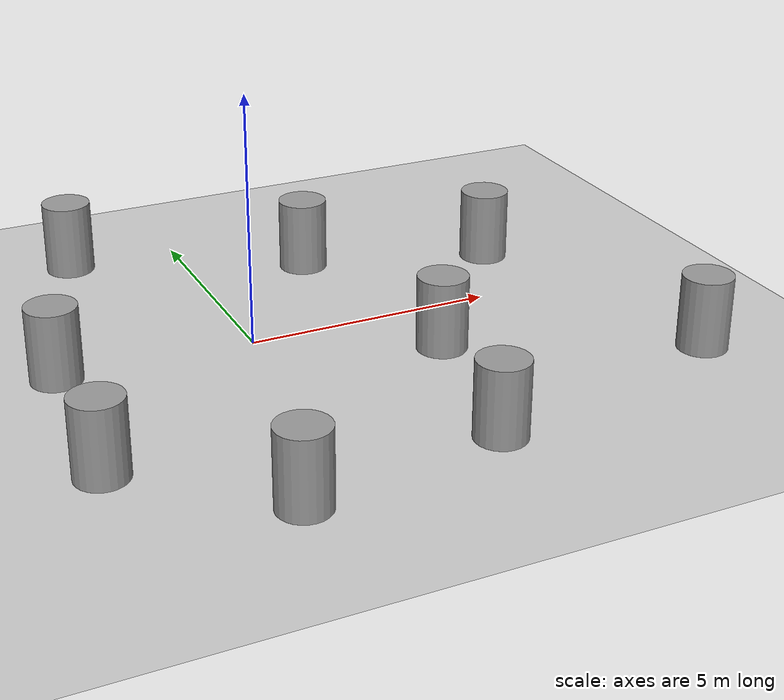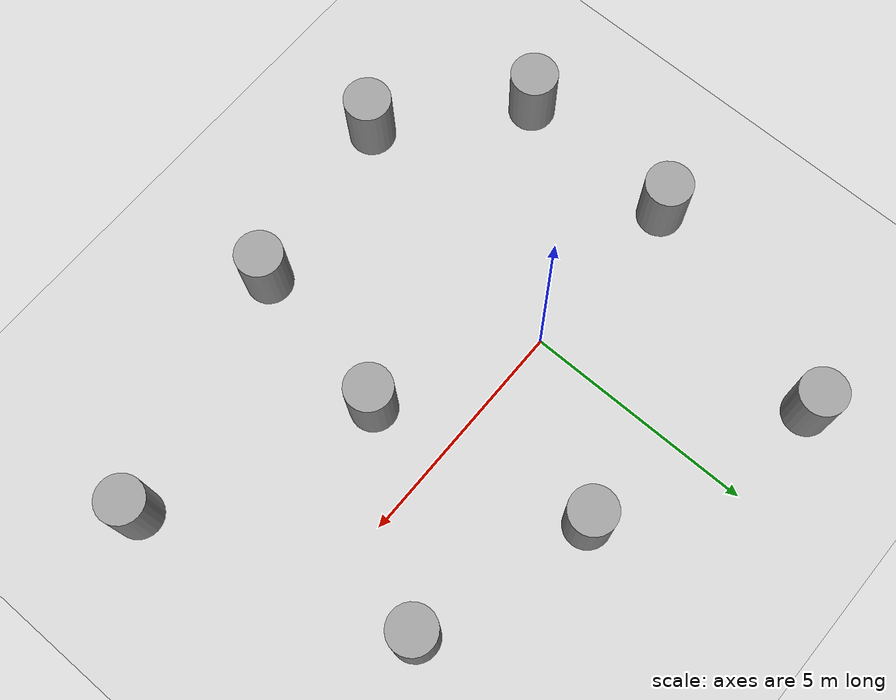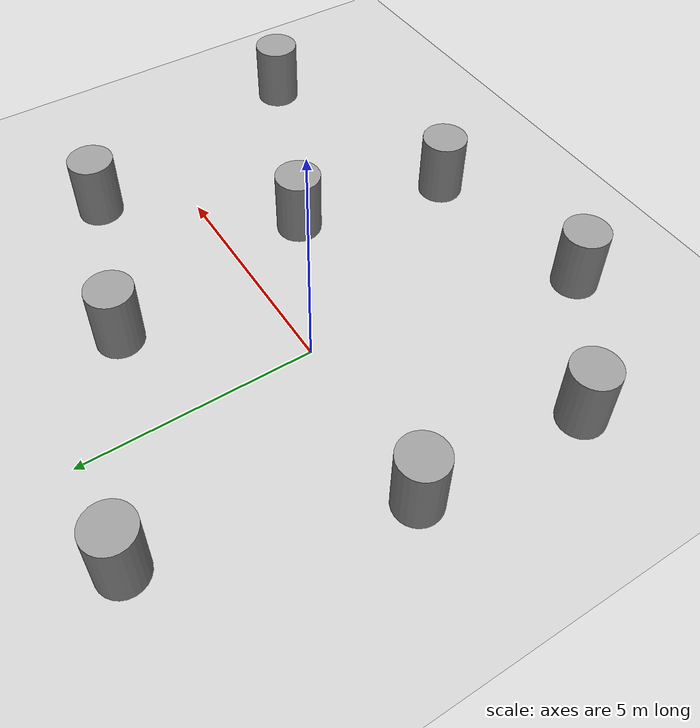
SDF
<sdf version="1.7">
 <world name="default">
  <light name="sun" type="directional">
   <pose>0 0 10 0 -0 0</pose>
   <diffuse>0.8 0.8 0.8 1</diffuse>
   <specular>0.2 0.2 0.2 1</specular>
   <attenuation>
    <range>1000</range>
    <constant>0.9</constant>
    <linear>0.01</linear>
    <quadratic>0.001</quadratic>
   </attenuation>
   <direction>-0.5 0.1 -0.9</direction>
   <spot><inner_angle>0</inner_angle><outer_angle>0</outer_angle><falloff>0</falloff></spot>
  </light>
  <model name="ground_plane">
   <static>1</static>
   <link name="link">
    <collision name="collision">
     <geometry><plane><normal>0 0 1</normal><size>100 100</size></plane></geometry>
     <surface><friction><ode><mu>100</mu><mu2>50</mu2></ode></friction></surface>
    </collision>
    <visual name="visual">
     <cast_shadows>0</cast_shadows>
     <geometry><plane><normal>0 0 1</normal><size>100 100</size></plane></geometry>
     <material>
      <script><uri>file://media/materials/scripts/gazebo.material</uri><name>Gazebo/Grey</name></script>
     </material>
    </visual>
   </link>
  </model>
  <gravity>0 0 -9.8</gravity>
  <magnetic_field>6e-06 2.3e-05 -4.2e-05</magnetic_field>
  <atmosphere type="adiabatic"/>
  <physics type="ode">
   <max_step_size>0.001</max_step_size>
   <real_time_factor>1</real_time_factor>
   <real_time_update_rate>1000</real_time_update_rate>
  </physics>
  <scene><ambient>0.4 0.4 0.4 1</ambient><background>0.7 0.7 0.7 1</background><shadows>1</shadows></scene>
  <spherical_coordinates>
   <surface_model>EARTH_WGS84</surface_model>
   <latitude_deg>0</latitude_deg>
   <longitude_deg>0</longitude_deg>
   <elevation>0</elevation>
   <heading_deg>0</heading_deg>
  </spherical_coordinates>
  <model name="unit_cylinder">
   <link name="link">
    <inertial>
     <mass>1</mass>
     <inertia><ixx>0.145833</ixx><ixy>0</ixy><ixz>0</ixz><iyy>0.145833</iyy><iyz>0</iyz><izz>0.125</izz></inertia>
    </inertial>
    <visual name="visual">
     <geometry><cylinder><radius>0.5</radius><length>2</length></cylinder></geometry>
     <material>
      <script><name>Gazebo/Grey</name><uri>file://media/materials/scripts/gazebo.material</uri></script>
      <shader type="pixel"><normal_map>__default__</normal_map></shader>
      <ambient>0.3 0.3 0.3 1</ambient>
      <diffuse>0.7 0.7 0.7 1</diffuse>
      <specular>0.01 0.01 0.01 1</specular>
      <emissive>0 0 0 1</emissive>
     </material>
    </visual>
    <collision name="collision">
     <geometry><cylinder><radius>0.5</radius><length>1</length></cylinder></geometry>
     <surface>
      <friction>
       <ode><mu>1</mu><mu2>1</mu2><fdir1>0 0 0</fdir1><slip1>0</slip1><slip2>0</slip2></ode>
       <torsional>
        <coefficient>1</coefficient>
        <patch_radius>0</patch_radius>
        <surface_radius>0</surface_radius>
        <use_patch_radius>1</use_patch_radius>
        <ode><slip>0</slip></ode>
       </torsional>
      </friction>
      <bounce><restitution_coefficient>0</restitution_coefficient><threshold>1e+06</threshold></bounce>
      <contact>
       <collide_without_contact>0</collide_without_contact>
       <collide_without_contact_bitmask>1</collide_without_contact_bitmask>
       <collide_bitmask>1</collide_bitmask>
       <ode>
        <soft_cfm>0</soft_cfm>
        <soft_erp>0.2</soft_erp>
        <kp>1e+13</kp>
        <kd>1</kd>
        <max_vel>0.01</max_vel>
        <min_depth>0</min_depth>
       </ode>
       <bullet>
        <split_impulse>1</split_impulse>
        <split_impulse_penetration_threshold>-0.01</split_impulse_penetration_threshold>
        <soft_cfm>0</soft_cfm>
        <soft_erp>0.2</soft_erp>
        <kp>1e+13</kp>
        <kd>1</kd>
       </bullet>
      </contact>
     </surface>
    </collision>
   </link>
   <static>0</static>
   <pose>3.24463 -1.66924 0.499991 0 -0 0</pose>
  </model>
  <model name="unit_cylinder_0">
   <link name="link">
    <inertial>
     <mass>1</mass>
     <inertia><ixx>0.145833</ixx><ixy>0</ixy><ixz>0</ixz><iyy>0.145833</iyy><iyz>0</iyz><izz>0.125</izz></inertia>
    </inertial>
    <visual name="visual">
     <geometry><cylinder><radius>0.5</radius><length>2</length></cylinder></geometry>
     <material>
      <script><name>Gazebo/Grey</name><uri>file://media/materials/scripts/gazebo.material</uri></script>
      <shader type="pixel"><normal_map>__default__</normal_map></shader>
      <ambient>0.3 0.3 0.3 1</ambient>
      <diffuse>0.7 0.7 0.7 1</diffuse>
      <specular>0.01 0.01 0.01 1</specular>
      <emissive>0 0 0 1</emissive>
     </material>
    </visual>
    <collision name="collision">
     <geometry><cylinder><radius>0.5</radius><length>1</length></cylinder></geometry>
     <surface>
      <friction>
       <ode><mu>1</mu><mu2>1</mu2><fdir1>0 0 0</fdir1><slip1>0</slip1><slip2>0</slip2></ode>
       <torsional>
        <coefficient>1</coefficient>
        <patch_radius>0</patch_radius>
        <surface_radius>0</surface_radius>
        <use_patch_radius>1</use_patch_radius>
        <ode><slip>0</slip></ode>
       </torsional>
      </friction>
      <bounce><restitution_coefficient>0</restitution_coefficient><threshold>1e+06</threshold></bounce>
      <contact>
       <collide_without_contact>0</collide_without_contact>
       <collide_without_contact_bitmask>1</collide_without_contact_bitmask>
       <collide_bitmask>1</collide_bitmask>
       <ode>
        <soft_cfm>0</soft_cfm>
        <soft_erp>0.2</soft_erp>
        <kp>1e+13</kp>
        <kd>1</kd>
        <max_vel>0.01</max_vel>
        <min_depth>0</min_depth>
       </ode>
       <bullet>
        <split_impulse>1</split_impulse>
        <split_impulse_penetration_threshold>-0.01</split_impulse_penetration_threshold>
        <soft_cfm>0</soft_cfm>
        <soft_erp>0.2</soft_erp>
        <kp>1e+13</kp>
        <kd>1</kd>
       </bullet>
      </contact>
     </surface>
    </collision>
   </link>
   <static>0</static>
   <pose>2.34536 3.07079 0.5 0 -0 0</pose>
  </model>
  <model name="unit_cylinder_1">
   <link name="link">
    <inertial>
     <mass>1</mass>
     <inertia><ixx>0.145833</ixx><ixy>0</ixy><ixz>0</ixz><iyy>0.145833</iyy><iyz>0</iyz><izz>0.125</izz></inertia>
    </inertial>
    <visual name="visual">
     <geometry><cylinder><radius>0.5</radius><length>2</length></cylinder></geometry>
     <material>
      <script><name>Gazebo/Grey</name><uri>file://media/materials/scripts/gazebo.material</uri></script>
      <shader type="pixel"><normal_map>__default__</normal_map></shader>
      <ambient>0.3 0.3 0.3 1</ambient>
      <diffuse>0.7 0.7 0.7 1</diffuse>
      <specular>0.01 0.01 0.01 1</specular>
      <emissive>0 0 0 1</emissive>
     </material>
    </visual>
    <collision name="collision">
     <geometry><cylinder><radius>0.5</radius><length>1</length></cylinder></geometry>
     <surface>
      <friction>
       <ode><mu>1</mu><mu2>1</mu2><fdir1>0 0 0</fdir1><slip1>0</slip1><slip2>0</slip2></ode>
       <torsional>
        <coefficient>1</coefficient>
        <patch_radius>0</patch_radius>
        <surface_radius>0</surface_radius>
        <use_patch_radius>1</use_patch_radius>
        <ode><slip>0</slip></ode>
       </torsional>
      </friction>
      <bounce><restitution_coefficient>0</restitution_coefficient><threshold>1e+06</threshold></bounce>
      <contact>
       <collide_without_contact>0</collide_without_contact>
       <collide_without_contact_bitmask>1</collide_without_contact_bitmask>
       <collide_bitmask>1</collide_bitmask>
       <ode>
        <soft_cfm>0</soft_cfm>
        <soft_erp>0.2</soft_erp>
        <kp>1e+13</kp>
        <kd>1</kd>
        <max_vel>0.01</max_vel>
        <min_depth>0</min_depth>
       </ode>
       <bullet>
        <split_impulse>1</split_impulse>
        <split_impulse_penetration_threshold>-0.01</split_impulse_penetration_threshold>
        <soft_cfm>0</soft_cfm>
        <soft_erp>0.2</soft_erp>
        <kp>1e+13</kp>
        <kd>1</kd>
       </bullet>
      </contact>
     </surface>
    </collision>
   </link>
   <static>0</static>
   <pose>-1.33969 -5.76312 0.499991 0 -0 0</pose>
  </model>
  <model name="unit_cylinder_2">
   <link name="link">
    <inertial>
     <mass>1</mass>
     <inertia><ixx>0.145833</ixx><ixy>0</ixy><ixz>0</ixz><iyy>0.145833</iyy><iyz>0</iyz><izz>0.125</izz></inertia>
    </inertial>
    <visual name="visual">
     <geometry><cylinder><radius>0.5</radius><length>2</length></cylinder></geometry>
     <material>
      <script><name>Gazebo/Grey</name><uri>file://media/materials/scripts/gazebo.material</uri></script>
      <shader type="pixel"><normal_map>__default__</normal_map></shader>
      <ambient>0.3 0.3 0.3 1</ambient>
      <diffuse>0.7 0.7 0.7 1</diffuse>
      <specular>0.01 0.01 0.01 1</specular>
      <emissive>0 0 0 1</emissive>
     </material>
    </visual>
    <collision name="collision">
     <geometry><cylinder><radius>0.5</radius><length>1</length></cylinder></geometry>
     <surface>
      <friction>
       <ode><mu>1</mu><mu2>1</mu2><fdir1>0 0 0</fdir1><slip1>0</slip1><slip2>0</slip2></ode>
       <torsional>
        <coefficient>1</coefficient>
        <patch_radius>0</patch_radius>
        <surface_radius>0</surface_radius>
        <use_patch_radius>1</use_patch_radius>
        <ode><slip>0</slip></ode>
       </torsional>
      </friction>
      <bounce><restitution_coefficient>0</restitution_coefficient><threshold>1e+06</threshold></bounce>
      <contact>
       <collide_without_contact>0</collide_without_contact>
       <collide_without_contact_bitmask>1</collide_without_contact_bitmask>
       <collide_bitmask>1</collide_bitmask>
       <ode>
        <soft_cfm>0</soft_cfm>
        <soft_erp>0.2</soft_erp>
        <kp>1e+13</kp>
        <kd>1</kd>
        <max_vel>0.01</max_vel>
        <min_depth>0</min_depth>
       </ode>
       <bullet>
        <split_impulse>1</split_impulse>
        <split_impulse_penetration_threshold>-0.01</split_impulse_penetration_threshold>
        <soft_cfm>0</soft_cfm>
        <soft_erp>0.2</soft_erp>
        <kp>1e+13</kp>
        <kd>1</kd>
       </bullet>
      </contact>
     </surface>
    </collision>
   </link>
   <static>0</static>
   <pose>-3.81223 0.141966 0.5 0 -0 0</pose>
  </model>
  <model name="unit_cylinder_3">
   <link name="link">
    <inertial>
     <mass>1</mass>
     <inertia><ixx>0.145833</ixx><ixy>0</ixy><ixz>0</ixz><iyy>0.145833</iyy><iyz>0</iyz><izz>0.125</izz></inertia>
    </inertial>
    <visual name="visual">
     <geometry><cylinder><radius>0.5</radius><length>2</length></cylinder></geometry>
     <material>
      <script><name>Gazebo/Grey</name><uri>file://media/materials/scripts/gazebo.material</uri></script>
      <shader type="pixel"><normal_map>__default__</normal_map></shader>
      <ambient>0.3 0.3 0.3 1</ambient>
      <diffuse>0.7 0.7 0.7 1</diffuse>
      <specular>0.01 0.01 0.01 1</specular>
      <emissive>0 0 0 1</emissive>
     </material>
    </visual>
    <collision name="collision">
     <geometry><cylinder><radius>0.5</radius><length>1</length></cylinder></geometry>
     <surface>
      <friction>
       <ode><mu>1</mu><mu2>1</mu2><fdir1>0 0 0</fdir1><slip1>0</slip1><slip2>0</slip2></ode>
       <torsional>
        <coefficient>1</coefficient>
        <patch_radius>0</patch_radius>
        <surface_radius>0</surface_radius>
        <use_patch_radius>1</use_patch_radius>
        <ode><slip>0</slip></ode>
       </torsional>
      </friction>
      <bounce><restitution_coefficient>0</restitution_coefficient><threshold>1e+06</threshold></bounce>
      <contact>
       <collide_without_contact>0</collide_without_contact>
       <collide_without_contact_bitmask>1</collide_without_contact_bitmask>
       <collide_bitmask>1</collide_bitmask>
       <ode>
        <soft_cfm>0</soft_cfm>
        <soft_erp>0.2</soft_erp>
        <kp>1e+13</kp>
        <kd>1</kd>
        <max_vel>0.01</max_vel>
        <min_depth>0</min_depth>
       </ode>
       <bullet>
        <split_impulse>1</split_impulse>
        <split_impulse_penetration_threshold>-0.01</split_impulse_penetration_threshold>
        <soft_cfm>0</soft_cfm>
        <soft_erp>0.2</soft_erp>
        <kp>1e+13</kp>
        <kd>1</kd>
       </bullet>
      </contact>
     </surface>
    </collision>
   </link>
   <static>0</static>
   <pose>-3.99619 -3.50128 0.499991 0 -0 0</pose>
  </model>
  <model name="unit_cylinder_4">
   <link name="link">
    <inertial>
     <mass>1</mass>
     <inertia><ixx>0.145833</ixx><ixy>0</ixy><ixz>0</ixz><iyy>0.145833</iyy><iyz>0</iyz><izz>0.125</izz></inertia>
    </inertial>
    <visual name="visual">
     <geometry><cylinder><radius>0.5</radius><length>2</length></cylinder></geometry>
     <material>
      <script><name>Gazebo/Grey</name><uri>file://media/materials/scripts/gazebo.material</uri></script>
      <shader type="pixel"><normal_map>__default__</normal_map></shader>
      <ambient>0.3 0.3 0.3 1</ambient>
      <diffuse>0.7 0.7 0.7 1</diffuse>
      <specular>0.01 0.01 0.01 1</specular>
      <emissive>0 0 0 1</emissive>
     </material>
    </visual>
    <collision name="collision">
     <geometry><cylinder><radius>0.5</radius><length>1</length></cylinder></geometry>
     <surface>
      <friction>
       <ode><mu>1</mu><mu2>1</mu2><fdir1>0 0 0</fdir1><slip1>0</slip1><slip2>0</slip2></ode>
       <torsional>
        <coefficient>1</coefficient>
        <patch_radius>0</patch_radius>
        <surface_radius>0</surface_radius>
        <use_patch_radius>1</use_patch_radius>
        <ode><slip>0</slip></ode>
       </torsional>
      </friction>
      <bounce><restitution_coefficient>0</restitution_coefficient><threshold>1e+06</threshold></bounce>
      <contact>
       <collide_without_contact>0</collide_without_contact>
       <collide_without_contact_bitmask>1</collide_without_contact_bitmask>
       <collide_bitmask>1</collide_bitmask>
       <ode>
        <soft_cfm>0</soft_cfm>
        <soft_erp>0.2</soft_erp>
        <kp>1e+13</kp>
        <kd>1</kd>
        <max_vel>0.01</max_vel>
        <min_depth>0</min_depth>
       </ode>
       <bullet>
        <split_impulse>1</split_impulse>
        <split_impulse_penetration_threshold>-0.01</split_impulse_penetration_threshold>
        <soft_cfm>0</soft_cfm>
        <soft_erp>0.2</soft_erp>
        <kp>1e+13</kp>
        <kd>1</kd>
       </bullet>
      </contact>
     </surface>
    </collision>
   </link>
   <static>0</static>
   <pose>6.11648 1.91932 0.5 0 -0 0</pose>
  </model>
  <model name="unit_cylinder_5">
   <link name="link">
    <inertial>
     <mass>1</mass>
     <inertia><ixx>0.145833</ixx><ixy>0</ixy><ixz>0</ixz><iyy>0.145833</iyy><iyz>0</iyz><izz>0.125</izz></inertia>
    </inertial>
    <visual name="visual">
     <geometry><cylinder><radius>0.5</radius><length>2</length></cylinder></geometry>
     <material>
      <script><name>Gazebo/Grey</name><uri>file://media/materials/scripts/gazebo.material</uri></script>
      <shader type="pixel"><normal_map>__default__</normal_map></shader>
      <ambient>0.3 0.3 0.3 1</ambient>
      <diffuse>0.7 0.7 0.7 1</diffuse>
      <specular>0.01 0.01 0.01 1</specular>
      <emissive>0 0 0 1</emissive>
     </material>
    </visual>
    <collision name="collision">
     <geometry><cylinder><radius>0.5</radius><length>1</length></cylinder></geometry>
     <surface>
      <friction>
       <ode><mu>1</mu><mu2>1</mu2><fdir1>0 0 0</fdir1><slip1>0</slip1><slip2>0</slip2></ode>
       <torsional>
        <coefficient>1</coefficient>
        <patch_radius>0</patch_radius>
        <surface_radius>0</surface_radius>
        <use_patch_radius>1</use_patch_radius>
        <ode><slip>0</slip></ode>
       </torsional>
      </friction>
      <bounce><restitution_coefficient>0</restitution_coefficient><threshold>1e+06</threshold></bounce>
      <contact>
       <collide_without_contact>0</collide_without_contact>
       <collide_without_contact_bitmask>1</collide_without_contact_bitmask>
       <collide_bitmask>1</collide_bitmask>
       <ode>
        <soft_cfm>0</soft_cfm>
        <soft_erp>0.2</soft_erp>
        <kp>1e+13</kp>
        <kd>1</kd>
        <max_vel>0.01</max_vel>
        <min_depth>0</min_depth>
       </ode>
       <bullet>
        <split_impulse>1</split_impulse>
        <split_impulse_penetration_threshold>-0.01</split_impulse_penetration_threshold>
        <soft_cfm>0</soft_cfm>
        <soft_erp>0.2</soft_erp>
        <kp>1e+13</kp>
        <kd>1</kd>
       </bullet>
      </contact>
     </surface>
    </collision>
   </link>
   <static>0</static>
   <pose>2.58885 -5.13283 0.499991 0 -0 0</pose>
  </model>
  <model name="unit_cylinder_6">
   <link name="link">
    <inertial>
     <mass>1</mass>
     <inertia><ixx>0.145833</ixx><ixy>0</ixy><ixz>0</ixz><iyy>0.145833</iyy><iyz>0</iyz><izz>0.125</izz></inertia>
    </inertial>
    <visual name="visual">
     <geometry><cylinder><radius>0.5</radius><length>2</length></cylinder></geometry>
     <material>
      <script><name>Gazebo/Grey</name><uri>file://media/materials/scripts/gazebo.material</uri></script>
      <shader type="pixel"><normal_map>__default__</normal_map></shader>
      <ambient>0.3 0.3 0.3 1</ambient>
      <diffuse>0.7 0.7 0.7 1</diffuse>
      <specular>0.01 0.01 0.01 1</specular>
      <emissive>0 0 0 1</emissive>
     </material>
    </visual>
    <collision name="collision">
     <geometry><cylinder><radius>0.5</radius><length>1</length></cylinder></geometry>
     <surface>
      <friction>
       <ode><mu>1</mu><mu2>1</mu2><fdir1>0 0 0</fdir1><slip1>0</slip1><slip2>0</slip2></ode>
       <torsional>
        <coefficient>1</coefficient>
        <patch_radius>0</patch_radius>
        <surface_radius>0</surface_radius>
        <use_patch_radius>1</use_patch_radius>
        <ode><slip>0</slip></ode>
       </torsional>
      </friction>
      <bounce><restitution_coefficient>0</restitution_coefficient><threshold>1e+06</threshold></bounce>
      <contact>
       <collide_without_contact>0</collide_without_contact>
       <collide_without_contact_bitmask>1</collide_without_contact_bitmask>
       <collide_bitmask>1</collide_bitmask>
       <ode>
        <soft_cfm>0</soft_cfm>
        <soft_erp>0.2</soft_erp>
        <kp>1e+13</kp>
        <kd>1</kd>
        <max_vel>0.01</max_vel>
        <min_depth>0</min_depth>
       </ode>
       <bullet>
        <split_impulse>1</split_impulse>
        <split_impulse_penetration_threshold>-0.01</split_impulse_penetration_threshold>
        <soft_cfm>0</soft_cfm>
        <soft_erp>0.2</soft_erp>
        <kp>1e+13</kp>
        <kd>1</kd>
       </bullet>
      </contact>
     </surface>
    </collision>
   </link>
   <static>0</static>
   <pose>-2.24868 5.01311 0.5 -0 -0 -0</pose>
  </model>
  <model name="unit_cylinder_7">
   <link name="link">
    <inertial>
     <mass>1</mass>
     <inertia><ixx>0.145833</ixx><ixy>0</ixy><ixz>0</ixz><iyy>0.145833</iyy><iyz>0</iyz><izz>0.125</izz></inertia>
    </inertial>
    <visual name="visual">
     <geometry><cylinder><radius>0.5</radius><length>2</length></cylinder></geometry>
     <material>
      <script><name>Gazebo/Grey</name><uri>file://media/materials/scripts/gazebo.material</uri></script>
      <shader type="pixel"><normal_map>__default__</normal_map></shader>
      <ambient>0.3 0.3 0.3 1</ambient>
      <diffuse>0.7 0.7 0.7 1</diffuse>
      <specular>0.01 0.01 0.01 1</specular>
      <emissive>0 0 0 1</emissive>
     </material>
    </visual>
    <collision name="collision">
     <geometry><cylinder><radius>0.5</radius><length>1</length></cylinder></geometry>
     <surface>
      <friction>
       <ode><mu>1</mu><mu2>1</mu2><fdir1>0 0 0</fdir1><slip1>0</slip1><slip2>0</slip2></ode>
       <torsional>
        <coefficient>1</coefficient>
        <patch_radius>0</patch_radius>
        <surface_radius>0</surface_radius>
        <use_patch_radius>1</use_patch_radius>
        <ode><slip>0</slip></ode>
       </torsional>
      </friction>
      <bounce><restitution_coefficient>0</restitution_coefficient><threshold>1e+06</threshold></bounce>
      <contact>
       <collide_without_contact>0</collide_without_contact>
       <collide_without_contact_bitmask>1</collide_without_contact_bitmask>
       <collide_bitmask>1</collide_bitmask>
       <ode>
        <soft_cfm>0</soft_cfm>
        <soft_erp>0.2</soft_erp>
        <kp>1e+13</kp>
        <kd>1</kd>
        <max_vel>0.01</max_vel>
        <min_depth>0</min_depth>
       </ode>
       <bullet>
        <split_impulse>1</split_impulse>
        <split_impulse_penetration_threshold>-0.01</split_impulse_penetration_threshold>
        <soft_cfm>0</soft_cfm>
        <soft_erp>0.2</soft_erp>
        <kp>1e+13</kp>
        <kd>1</kd>
       </bullet>
      </contact>
     </surface>
    </collision>
   </link>
   <static>0</static>
   <pose>7.80619 -3.75208 0.499991 0 -0 0</pose>
  </model>
 </world>
</sdf>
